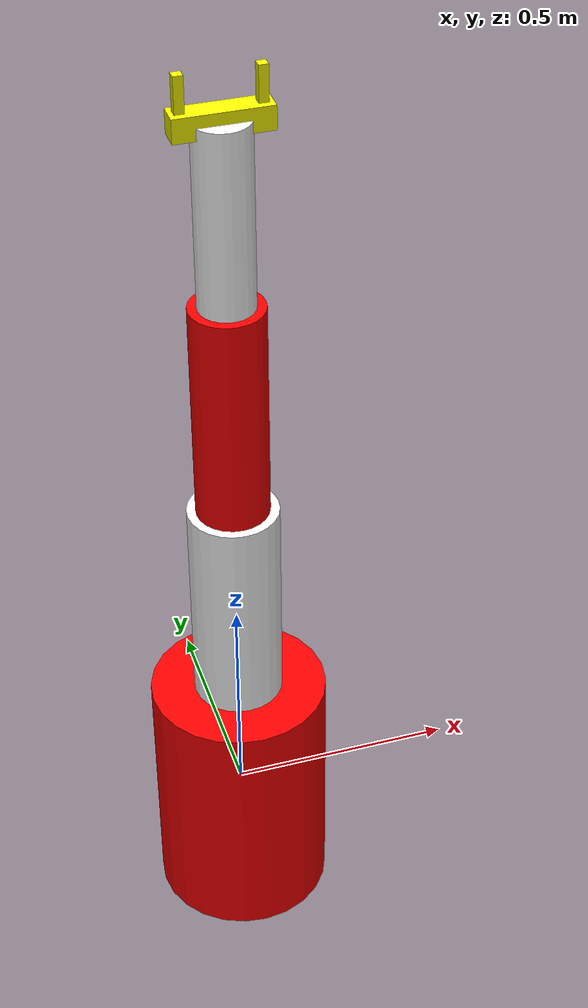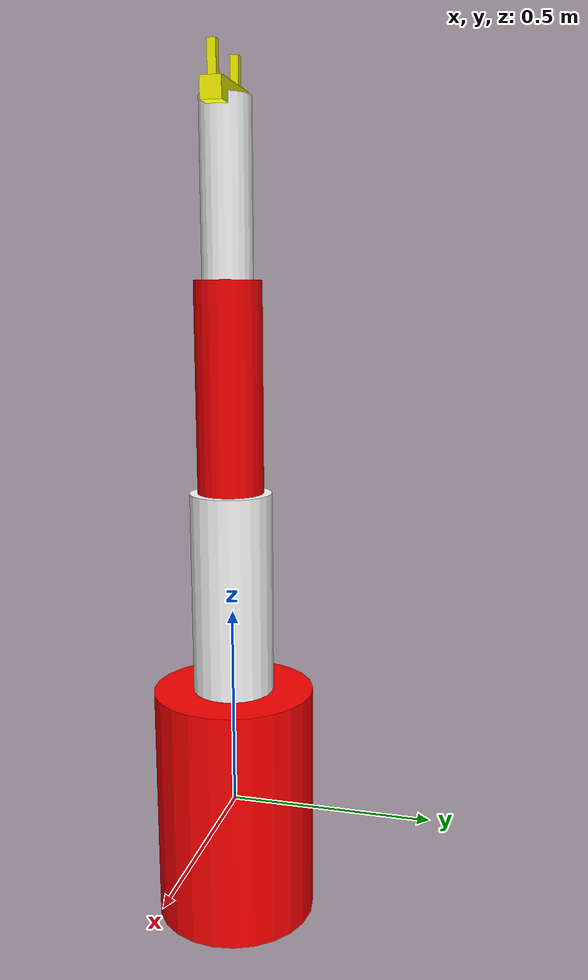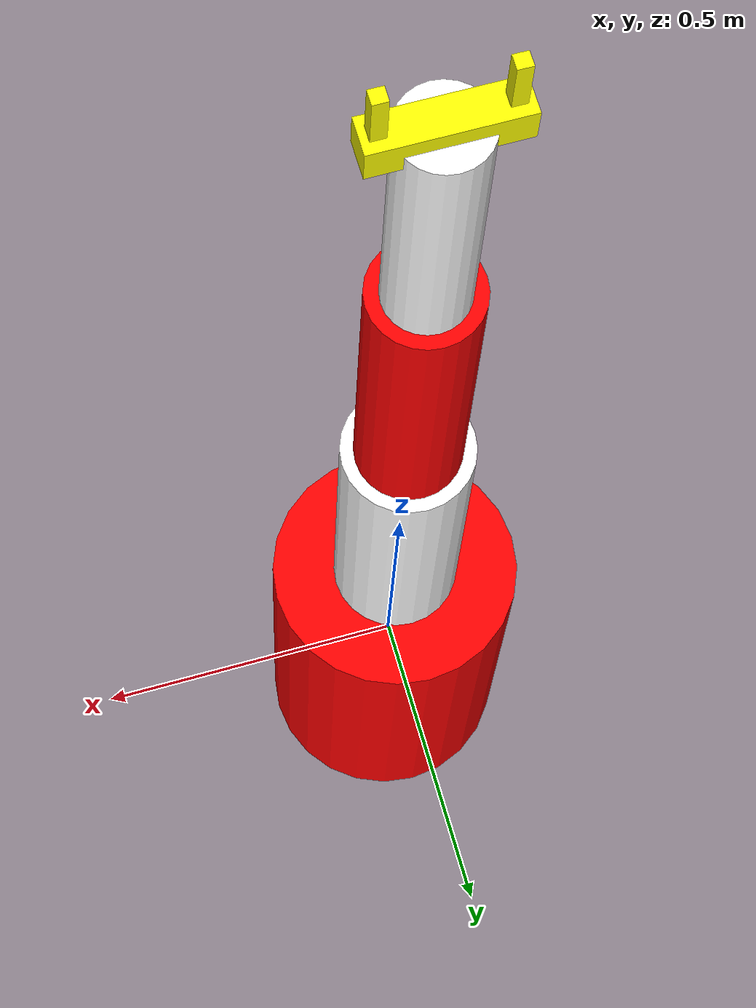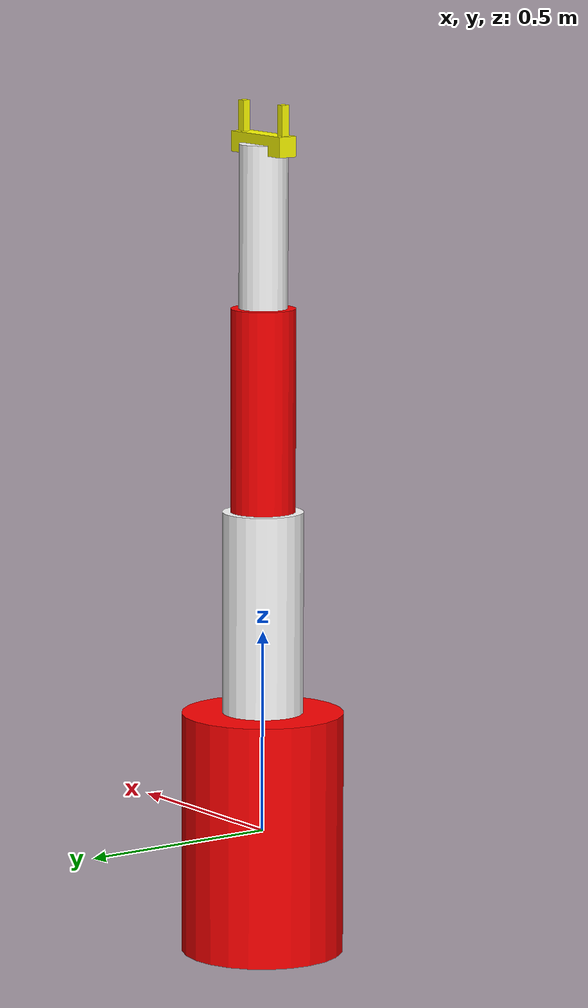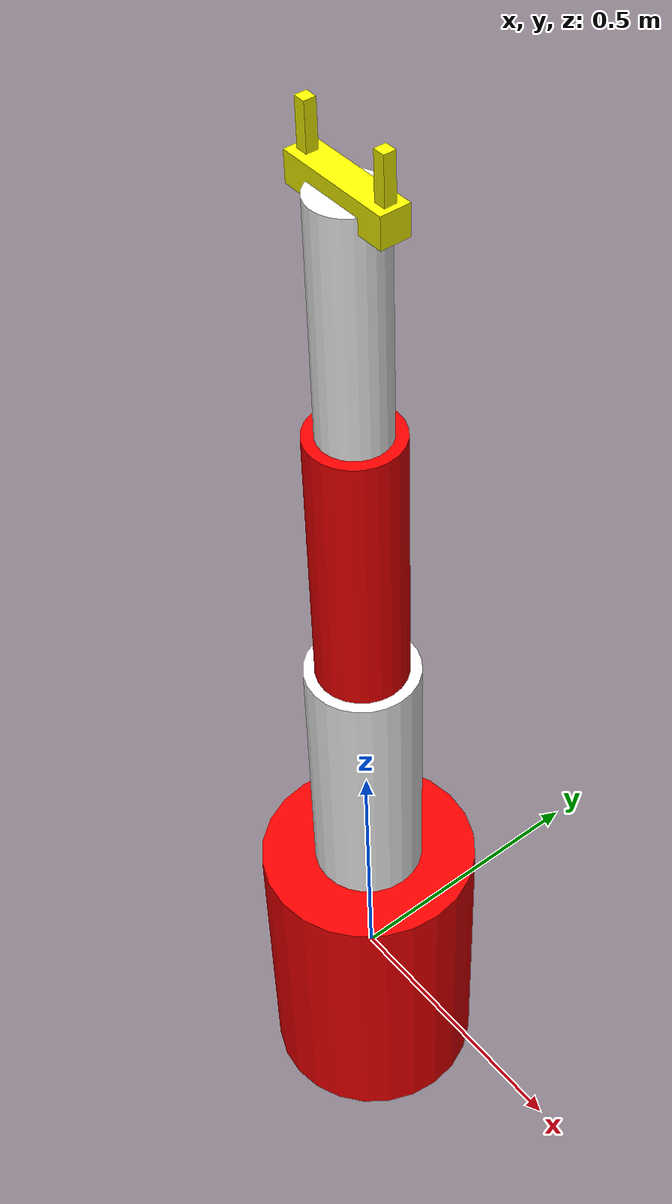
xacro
<?xml version="1.0" ?>
<!-- |    This document was autogenerated by xacro from antonie.urdf.xacro             | -->
<!-- |    EDITING THIS FILE BY HAND IS NOT RECOMMENDED                                 | -->
<robot name="antonie">

  <link name="base_link">
    <inertial>
      <mass value="5.0"/>
      <origin xyz="0 0 0" rpy="0 0 0"/>
      <inertia ixx="0.1" ixy="0.0" ixz="0.0" iyy="0.1" iyz="0.0" izz="0.1"/>
    </inertial>
    <visual>
      <geometry>
        <cylinder length="0.6" radius="0.2"/>
      </geometry>
      <material name="red">
        <color rgba="1.0 0.0 0.0 1.0"/>
      </material>
    </visual>
    <collision>
      <geometry>
        <cylinder length="0.6" radius="0.2"/>
      </geometry>
    </collision>
  </link>

  <link name="link_1">
    <inertial>
      <mass value="2.0"/>
      <origin xyz="0 0 0.25" rpy="0 0 0"/>
      <inertia ixx="0.05" ixy="0.0" ixz="0.0" iyy="0.05" iyz="0.0" izz="0.01"/>
    </inertial>
    <visual>
      <origin xyz="0 0 0.25"/>
      <geometry>
        <cylinder length="0.5" radius="0.1"/>
      </geometry>
      <material name="white">
        <color rgba="1.0 1.0 1.0 1.0"/>
      </material>
    </visual>
    <collision>
      <origin xyz="0 0 0.25"/>
      <geometry>
        <cylinder length="0.5" radius="0.1"/>
      </geometry>
    </collision>
  </link>

  <link name="link_2">
    <inertial>
      <mass value="1.5"/>
      <origin xyz="0 0 0.25" rpy="0 0 0"/>
      <inertia ixx="0.03" ixy="0.0" ixz="0.0" iyy="0.03" iyz="0.0" izz="0.005"/>
    </inertial>
    <visual>
      <origin xyz="0 0 0.25"/>
      <geometry>
        <cylinder length="0.5" radius="0.08"/>
      </geometry>
      <material name="red">
        <color rgba="1.0 0.0 0.0 1.0"/>
      </material>
    </visual>
    <collision>
      <origin xyz="0 0 0.25"/>
      <geometry>
        <cylinder length="0.5" radius="0.08"/>
      </geometry>
    </collision>
  </link>

  <link name="link_3">
    <inertial>
      <mass value="1.0"/>
      <origin xyz="0 0 0.2" rpy="0 0 0"/>
      <inertia ixx="0.015" ixy="0.0" ixz="0.0" iyy="0.015" iyz="0.0" izz="0.002"/>
    </inertial>
    <visual>
      <origin xyz="0 0 0.2"/>
      <geometry>
        <cylinder length="0.4" radius="0.06"/>
      </geometry>
      <material name="white">
        <color rgba="1.0 1.0 1.0 1.0"/>
      </material>
    </visual>
    <collision>
      <origin xyz="0 0 0.2"/>
      <geometry>
        <cylinder length="0.4" radius="0.06"/>
      </geometry>
    </collision>
  </link>

  <link name="gripper_base">
    <inertial>
      <mass value="0.5"/>
      <origin xyz="0 0 0" rpy="0 0 0"/>
      <inertia ixx="0.002" ixy="0.0" ixz="0.0" iyy="0.002" iyz="0.0" izz="0.002"/>
    </inertial>
    <visual>
      <geometry>
        <box size="0.2 0.05 0.05"/>
      </geometry>
      <material name="yellow">
        <color rgba="1.0 1.0 0.0 1.0"/>
      </material>
    </visual>
    <collision>
      <geometry>
        <box size="0.2 0.05 0.05"/>
      </geometry>
    </collision>
  </link>

  <link name="left_finger">
    <inertial>
      <mass value="0.1"/>
      <origin xyz="0 0 0.05" rpy="0 0 0"/>
      <inertia ixx="0.0001" ixy="0.0" ixz="0.0" iyy="0.0001" iyz="0.0" izz="0.0001"/>
    </inertial>
    <visual>
      <origin xyz="0 0 0.05"/>
      <geometry>
        <box size="0.02 0.02 0.1"/>
      </geometry>
      <material name="yellow"/>
    </visual>
    <collision>
      <origin xyz="0 0 0.05"/>
      <geometry>
        <box size="0.02 0.02 0.1"/>
      </geometry>
    </collision>
  </link>

  <link name="right_finger">
    <inertial>
      <mass value="0.1"/>
      <origin xyz="0 0 0.05" rpy="0 0 0"/>
      <inertia ixx="0.0001" ixy="0.0" ixz="0.0" iyy="0.0001" iyz="0.0" izz="0.0001"/>
    </inertial>
    <visual>
      <origin xyz="0 0 0.05"/>
      <geometry>
        <box size="0.02 0.02 0.1"/>
      </geometry>
      <material name="yellow"/>
    </visual>
    <collision>
      <origin xyz="0 0 0.05"/>
      <geometry>
        <box size="0.02 0.02 0.1"/>
      </geometry>
    </collision>
  </link>

  <joint name="arm_0_joint" type="revolute">
    <parent link="base_link"/>
    <child link="link_1"/>
    <origin xyz="0 0 0.3"/>
    <axis xyz="0 0 1"/>
    <limit effort="10" lower="-3.14" upper="3.14" velocity="1.0"/>
  </joint>

  <joint name="arm_1_joint" type="revolute">
    <parent link="link_1"/>
    <child link="link_2"/>
    <origin xyz="0 0 0.5"/>
    <axis xyz="0 1 0"/>
    <limit effort="10" lower="-1.57" upper="1.57" velocity="1.0"/>
  </joint>

  <joint name="arm_2_joint" type="revolute">
    <parent link="link_2"/>
    <child link="link_3"/>
    <origin xyz="0 0 0.5"/>
    <axis xyz="0 1 0"/>
    <limit effort="10" lower="-1.57" upper="1.57" velocity="1.0"/>
  </joint>

  <joint name="gripper_fixed_joint" type="fixed">
    <parent link="link_3"/>
    <child link="gripper_base"/>
    <origin rpy="0 0 0" xyz="0 0 0.4"/>
  </joint>

  <joint name="gripper_1_joint" type="prismatic">
    <parent link="gripper_base"/>
    <child link="left_finger"/>
    <origin xyz="-0.08 0 0"/>
    <axis xyz="1 0 0"/>
    <limit effort="5" lower="0.0" upper="0.05" velocity="0.5"/>
  </joint>

  <joint name="gripper_2_joint" type="prismatic">
    <parent link="gripper_base"/>
    <child link="right_finger"/>
    <origin xyz="0.08 0 0"/>
    <axis xyz="-1 0 0"/>
    <limit effort="5" lower="0.0" upper="0.05" velocity="0.5"/>
  </joint>

  <ros2_control name="FakeSystem" type="system">
    <hardware>
      <plugin>gz_ros2_control/GazeboSimSystem</plugin>
    </hardware>
    <joint name="arm_0_joint">
      <command_interface name="position"/>
      <state_interface name="position">
        <param name="initial_value">0</param>
      </state_interface>
      <state_interface name="velocity"/>
    </joint>
    <joint name="arm_1_joint">
      <command_interface name="position"/>
      <state_interface name="position">
        <param name="initial_value">0</param>
      </state_interface>
      <state_interface name="velocity"/>
    </joint>
    <joint name="arm_2_joint">
      <command_interface name="position"/>
      <state_interface name="position">
        <param name="initial_value">0</param>
      </state_interface>
      <state_interface name="velocity"/>
    </joint>
    <joint name="gripper_1_joint">
      <command_interface name="position"/>
      <state_interface name="position">
        <param name="initial_value">0</param>
      </state_interface>
      <state_interface name="velocity"/>
    </joint>
    <joint name="gripper_2_joint">
      <command_interface name="position"/>
      <state_interface name="position">
        <param name="initial_value">0</param>
      </state_interface>
      <state_interface name="velocity"/>
    </joint>
  </ros2_control>

  <gazebo>
    <plugin filename="libgz_ros2_control-system.so" name="gz_ros2_control::GazeboSimROS2ControlPlugin">
      <parameters>/home/user/ros2_ws/install/antonie_moveit_config/share/antonie_moveit_config/config/ros2_controllers.yaml</parameters>
      <controller_manager_name>controller_manager</controller_manager_name>
    </plugin>
  </gazebo>
</robot>
